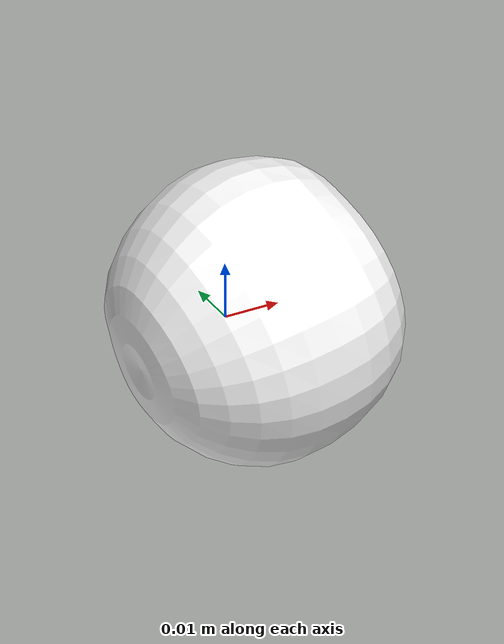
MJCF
<mujoco model="obj_apple">
  <asset>
    <mesh file="../mesh/obj_apple/visual/apple.obj" name="apple_vis" scale="1 1 1" refquat="0.7071067811865472 0.0 0.0 0.7071067811865476" />
    <mesh file="../mesh/obj_apple/collision/obj_apple0.obj" name="apple_col0._coll" scale="1 1 1" refquat="0.7071067811865472 0.0 0.0 0.7071067811865476" />
    <mesh file="../mesh/obj_apple/collision/obj_apple1.obj" name="apple_col1._coll" scale="1 1 1" refquat="0.7071067811865472 0.0 0.0 0.7071067811865476" />
    <material name="apple"  specular="0.5" shininess="0.359999993" /><!-- texture="mug_50" -->
  </asset>
  <worldbody>
    <body name="apple_obj">
      <freejoint /><body name="object_apple">
        <geom solimp="0.998 0.998 0.001" solref="0.001 1" density="100" friction="0.95 0.3 0.1" type="mesh" mesh="apple_vis" conaffinity="0" contype="0" group="2" material="apple" />

        <geom solimp="0.998 0.998 0.001" solref="0.001 1" density="100" friction="0.95 0.3 0.1" type="mesh" mesh="apple_col0._coll" group="3" rgba="0.8 0.8 0.8 0.0" />
        <geom solimp="0.998 0.998 0.001" solref="0.001 1" density="100" friction="0.95 0.3 0.1" type="mesh" mesh="apple_col1._coll" group="3" rgba="0.8 0.8 0.8 0.0" />
      </body>
      <site rgba="0 0 0 0" size="0.005" pos="4.243902500000201e-05 7.88710249999995e-05 -0.0428075701" name="bottom_site_apple" />
      <site rgba="0 0 0 0" size="0.005" pos="4.243902500000201e-05 7.88710249999995e-05 0.042628894599999995" name="top_site_apple" />
      <site rgba="0 0 0 0" size="0.005" pos="0.04203482185 0.05653210019999999 -8.933774999999949e-05" name="horizontal_radius_site_apple" />
    </body>
  </worldbody>
</mujoco>
